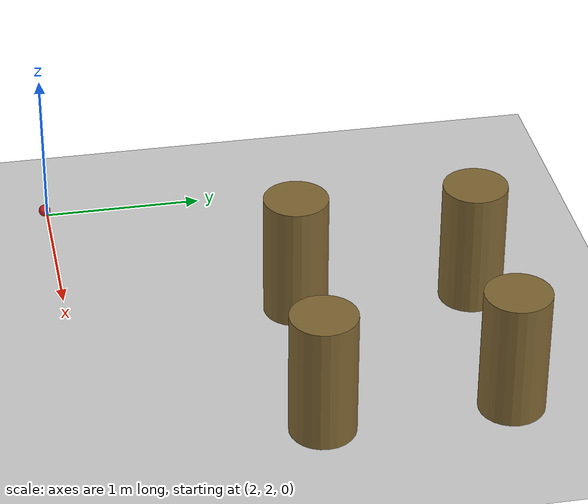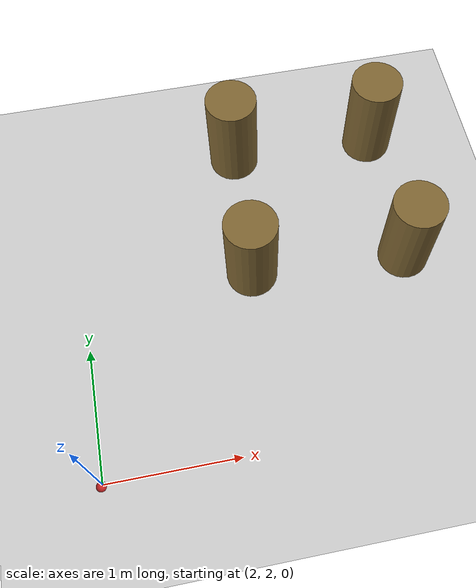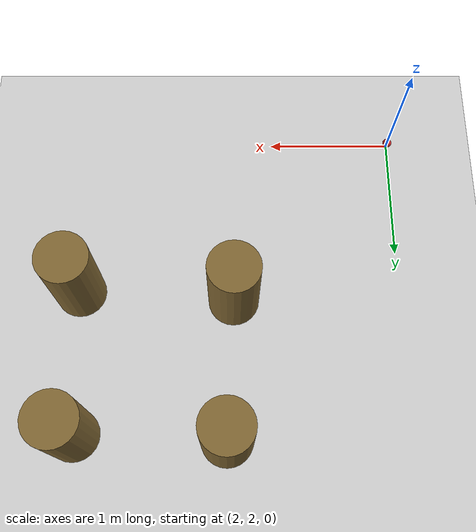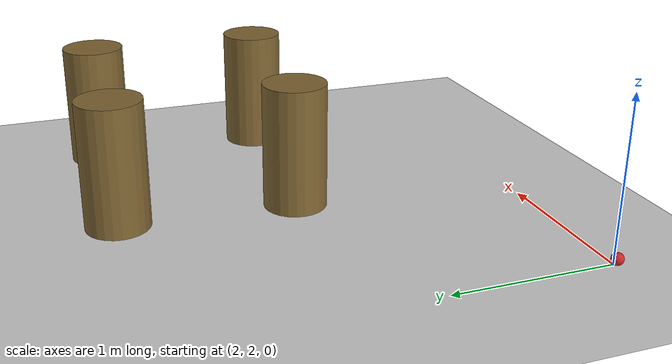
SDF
<sdf version="1.6">
 <world name="default">
  <scene><ambient>0.4 0.4 0.4 1</ambient><background>0.7 0.7 0.7 1</background><shadows>1</shadows></scene>
  <light name="sun" type="directional">
   <pose>0 0 10 0 -0 0</pose>
   <diffuse>0.8 0.8 0.8 1</diffuse>
   <specular>0.2 0.2 0.2 1</specular>
   <attenuation>
    <range>1000</range>
    <constant>0.9</constant>
    <linear>0.01</linear>
    <quadratic>0.001</quadratic>
   </attenuation>
   <direction>-0.5 0.1 -0.9</direction>
  </light>
  <model name="ground_plane">
   <static>1</static>
   <link name="link">
    <collision name="collision">
     <geometry><plane><normal>0 0 1</normal><size>100 100</size></plane></geometry>
     <surface><friction><ode><mu>100</mu><mu2>50</mu2></ode></friction></surface>
    </collision>
    <visual name="visual">
     <cast_shadows>0</cast_shadows>
     <geometry><plane><normal>0 0 1</normal><size>100 100</size></plane></geometry>
     <material>
      <script><uri>file://media/materials/scripts/gazebo.material</uri><name>Gazebo/Grey</name></script>
     </material>
    </visual>
   </link>
  </model>
  <physics name="default_physics" default="0" type="ode">
   <real_time_update_rate>1000</real_time_update_rate>
   <max_step_size>0.001</max_step_size>
   <real_time_factor>1</real_time_factor>
   <ode>
    <solver>
     <type>quick</type>
     <iters>150</iters>
     <precon_iters>0</precon_iters>
     <sor>1.4</sor>
     <use_dynamic_moi_rescaling>1</use_dynamic_moi_rescaling>
    </solver>
    <constraints>
     <cfm>1e-05</cfm>
     <erp>0.2</erp>
     <contact_max_correcting_vel>2000</contact_max_correcting_vel>
     <contact_surface_layer>0.01</contact_surface_layer>
    </constraints>
   </ode>
  </physics>
  <gravity>0 0 -9.8</gravity>
  <magnetic_field>6e-06 2.3e-05 -4.2e-05</magnetic_field>
  <atmosphere type="adiabatic"/>
  <spherical_coordinates>
   <surface_model>EARTH_WGS84</surface_model>
   <latitude_deg>0</latitude_deg>
   <longitude_deg>0</longitude_deg>
   <elevation>0</elevation>
   <heading_deg>0</heading_deg>
  </spherical_coordinates>
  <audio><device>default</device></audio>
  <model name="target_0">
   <link name="link">
    <pose>0 0 0.0375 0 -0 0</pose>
    <inertial>
     <mass>0.1467</mass>
     <inertia>
      <ixx>8.25187e-05</ixx>
      <ixy>0</ixy>
      <ixz>0</ixz>
      <iyy>8.25187e-05</iyy>
      <iyz>0</iyz>
      <izz>8.25187e-05</izz>
     </inertia>
    </inertial>
    <velocity_decay><linear>0</linear><angular>0.005</angular></velocity_decay>
    <visual name="visual">
     <geometry><sphere><radius>0.0375</radius></sphere></geometry>
     <material>
      <script><uri>file://media/materials/scripts/gazebo.material</uri><name>Gazebo/Red</name></script>
      <shader type="pixel"/>
     </material>
    </visual>
    <collision name="collision">
     <geometry><sphere><radius>0.0375</radius></sphere></geometry>
     <surface>
      <friction>
       <ode><mu>1</mu><mu2>1</mu2><fdir1>0 0 0</fdir1><slip1>0</slip1><slip2>0</slip2></ode>
       <torsional>
        <coefficient>1</coefficient>
        <patch_radius>0</patch_radius>
        <surface_radius>0.01</surface_radius>
        <use_patch_radius>0</use_patch_radius>
        <ode><slip>0</slip></ode>
       </torsional>
      </friction>
      <bounce><restitution_coefficient>0</restitution_coefficient><threshold>1e+06</threshold></bounce>
      <contact>
       <collide_without_contact>0</collide_without_contact>
       <collide_without_contact_bitmask>1</collide_without_contact_bitmask>
       <collide_bitmask>1</collide_bitmask>
       <ode>
        <soft_cfm>0</soft_cfm>
        <soft_erp>0.2</soft_erp>
        <kp>100000</kp>
        <kd>100</kd>
        <max_vel>100</max_vel>
        <min_depth>0.001</min_depth>
       </ode>
       <bullet>
        <split_impulse>1</split_impulse>
        <split_impulse_penetration_threshold>-0.01</split_impulse_penetration_threshold>
        <soft_cfm>0</soft_cfm>
        <soft_erp>0.2</soft_erp>
        <kp>100000</kp>
        <kd>100</kd>
       </bullet>
      </contact>
     </surface>
    </collision>
   </link>
   <static>0</static>
   <pose>1.99453 1.98306 -0.001014 0 -0 0</pose>
  </model>
  <model name="static_cylinder">
   <model name="mini_cylinder">
    <link name="link">
     <inertial>
      <mass>1</mass>
      <inertia><ixx>0.145833</ixx><ixy>0</ixy><ixz>0</ixz><iyy>0.145833</iyy><iyz>0</iyz><izz>0.125</izz></inertia>
     </inertial>
     <visual name="visual">
      <geometry><cylinder><radius>0.2</radius><length>0.8</length></cylinder></geometry>
      <material>
       <script><name>Gazebo/Grey</name><uri>file://media/materials/scripts/gazebo.material</uri></script>
       <shader type="vertex"><normal_map>__default__</normal_map></shader>
       <ambient>0.5 0.4 0.2 1</ambient>
       <diffuse>0.7 0.7 0.7 1</diffuse>
       <specular>0.01 0.01 0.01 1</specular>
       <emissive>0 0 0 1</emissive>
      </material>
     </visual>
     <collision name="collision">
      <geometry><cylinder><radius>0.2</radius><length>0.8</length></cylinder></geometry>
      <surface>
       <friction>
        <ode><mu>1</mu><mu2>1</mu2><fdir1>0 0 0</fdir1><slip1>0</slip1><slip2>0</slip2></ode>
        <torsional>
         <coefficient>1</coefficient>
         <patch_radius>0</patch_radius>
         <surface_radius>0</surface_radius>
         <use_patch_radius>1</use_patch_radius>
         <ode><slip>0</slip></ode>
        </torsional>
       </friction>
       <bounce><restitution_coefficient>0</restitution_coefficient><threshold>1e+06</threshold></bounce>
       <contact>
        <collide_without_contact>0</collide_without_contact>
        <collide_without_contact_bitmask>1</collide_without_contact_bitmask>
        <collide_bitmask>1</collide_bitmask>
        <ode>
         <soft_cfm>0</soft_cfm>
         <soft_erp>0.2</soft_erp>
         <kp>1e+13</kp>
         <kd>1</kd>
         <max_vel>0.01</max_vel>
         <min_depth>0</min_depth>
        </ode>
        <bullet>
         <split_impulse>1</split_impulse>
         <split_impulse_penetration_threshold>-0.01</split_impulse_penetration_threshold>
         <soft_cfm>0</soft_cfm>
         <soft_erp>0.2</soft_erp>
         <kp>1e+13</kp>
         <kd>1</kd>
        </bullet>
       </contact>
      </surface>
     </collision>
    </link>
    <static>0</static>
   </model>
   <static>1</static>
   <pose>4.53097 4.46948 0.399991 -1e-06 -1e-06 0</pose>
  </model>
  <model name="static_cylinder_clone">
   <model name="mini_cylinder">
    <link name="link">
     <inertial>
      <mass>1</mass>
      <inertia><ixx>0.145833</ixx><ixy>0</ixy><ixz>0</ixz><iyy>0.145833</iyy><iyz>0</iyz><izz>0.125</izz></inertia>
     </inertial>
     <visual name="visual">
      <geometry><cylinder><radius>0.2</radius><length>0.8</length></cylinder></geometry>
      <material>
       <script><name>Gazebo/Grey</name><uri>file://media/materials/scripts/gazebo.material</uri></script>
       <shader type="vertex"><normal_map>__default__</normal_map></shader>
       <ambient>0.5 0.4 0.2 1</ambient>
       <diffuse>0.7 0.7 0.7 1</diffuse>
       <specular>0.01 0.01 0.01 1</specular>
       <emissive>0 0 0 1</emissive>
      </material>
     </visual>
     <collision name="collision">
      <geometry><cylinder><radius>0.2</radius><length>0.8</length></cylinder></geometry>
      <surface>
       <friction>
        <ode><mu>1</mu><mu2>1</mu2><fdir1>0 0 0</fdir1><slip1>0</slip1><slip2>0</slip2></ode>
        <torsional>
         <coefficient>1</coefficient>
         <patch_radius>0</patch_radius>
         <surface_radius>0</surface_radius>
         <use_patch_radius>1</use_patch_radius>
         <ode><slip>0</slip></ode>
        </torsional>
       </friction>
       <bounce><restitution_coefficient>0</restitution_coefficient><threshold>1e+06</threshold></bounce>
       <contact>
        <collide_without_contact>0</collide_without_contact>
        <collide_without_contact_bitmask>1</collide_without_contact_bitmask>
        <collide_bitmask>1</collide_bitmask>
        <ode>
         <soft_cfm>0</soft_cfm>
         <soft_erp>0.2</soft_erp>
         <kp>1e+13</kp>
         <kd>1</kd>
         <max_vel>0.01</max_vel>
         <min_depth>0</min_depth>
        </ode>
        <bullet>
         <split_impulse>1</split_impulse>
         <split_impulse_penetration_threshold>-0.01</split_impulse_penetration_threshold>
         <soft_cfm>0</soft_cfm>
         <soft_erp>0.2</soft_erp>
         <kp>1e+13</kp>
         <kd>1</kd>
        </bullet>
       </contact>
      </surface>
     </collision>
    </link>
    <static>0</static>
   </model>
   <static>1</static>
   <pose>4.54763 3.34063 0.399991 -1e-06 -1e-06 0</pose>
  </model>
  <model name="static_cylinder_clone_0">
   <model name="mini_cylinder">
    <link name="link">
     <inertial>
      <mass>1</mass>
      <inertia><ixx>0.145833</ixx><ixy>0</ixy><ixz>0</ixz><iyy>0.145833</iyy><iyz>0</iyz><izz>0.125</izz></inertia>
     </inertial>
     <visual name="visual">
      <geometry><cylinder><radius>0.2</radius><length>0.8</length></cylinder></geometry>
      <material>
       <script><name>Gazebo/Grey</name><uri>file://media/materials/scripts/gazebo.material</uri></script>
       <shader type="vertex"><normal_map>__default__</normal_map></shader>
       <ambient>0.5 0.4 0.2 1</ambient>
       <diffuse>0.7 0.7 0.7 1</diffuse>
       <specular>0.01 0.01 0.01 1</specular>
       <emissive>0 0 0 1</emissive>
      </material>
     </visual>
     <collision name="collision">
      <geometry><cylinder><radius>0.2</radius><length>0.8</length></cylinder></geometry>
      <surface>
       <friction>
        <ode><mu>1</mu><mu2>1</mu2><fdir1>0 0 0</fdir1><slip1>0</slip1><slip2>0</slip2></ode>
        <torsional>
         <coefficient>1</coefficient>
         <patch_radius>0</patch_radius>
         <surface_radius>0</surface_radius>
         <use_patch_radius>1</use_patch_radius>
         <ode><slip>0</slip></ode>
        </torsional>
       </friction>
       <bounce><restitution_coefficient>0</restitution_coefficient><threshold>1e+06</threshold></bounce>
       <contact>
        <collide_without_contact>0</collide_without_contact>
        <collide_without_contact_bitmask>1</collide_without_contact_bitmask>
        <collide_bitmask>1</collide_bitmask>
        <ode>
         <soft_cfm>0</soft_cfm>
         <soft_erp>0.2</soft_erp>
         <kp>1e+13</kp>
         <kd>1</kd>
         <max_vel>0.01</max_vel>
         <min_depth>0</min_depth>
        </ode>
        <bullet>
         <split_impulse>1</split_impulse>
         <split_impulse_penetration_threshold>-0.01</split_impulse_penetration_threshold>
         <soft_cfm>0</soft_cfm>
         <soft_erp>0.2</soft_erp>
         <kp>1e+13</kp>
         <kd>1</kd>
        </bullet>
       </contact>
      </surface>
     </collision>
    </link>
    <static>0</static>
   </model>
   <static>1</static>
   <pose>3.37653 4.51173 0.399991 -1e-06 -1e-06 0</pose>
  </model>
  <model name="static_cylinder_clone_1">
   <model name="mini_cylinder">
    <link name="link">
     <inertial>
      <mass>1</mass>
      <inertia><ixx>0.145833</ixx><ixy>0</ixy><ixz>0</ixz><iyy>0.145833</iyy><iyz>0</iyz><izz>0.125</izz></inertia>
     </inertial>
     <visual name="visual">
      <geometry><cylinder><radius>0.2</radius><length>0.8</length></cylinder></geometry>
      <material>
       <script><name>Gazebo/Grey</name><uri>file://media/materials/scripts/gazebo.material</uri></script>
       <shader type="vertex"><normal_map>__default__</normal_map></shader>
       <ambient>0.5 0.4 0.2 1</ambient>
       <diffuse>0.7 0.7 0.7 1</diffuse>
       <specular>0.01 0.01 0.01 1</specular>
       <emissive>0 0 0 1</emissive>
      </material>
     </visual>
     <collision name="collision">
      <geometry><cylinder><radius>0.2</radius><length>0.8</length></cylinder></geometry>
      <surface>
       <friction>
        <ode><mu>1</mu><mu2>1</mu2><fdir1>0 0 0</fdir1><slip1>0</slip1><slip2>0</slip2></ode>
        <torsional>
         <coefficient>1</coefficient>
         <patch_radius>0</patch_radius>
         <surface_radius>0</surface_radius>
         <use_patch_radius>1</use_patch_radius>
         <ode><slip>0</slip></ode>
        </torsional>
       </friction>
       <bounce><restitution_coefficient>0</restitution_coefficient><threshold>1e+06</threshold></bounce>
       <contact>
        <collide_without_contact>0</collide_without_contact>
        <collide_without_contact_bitmask>1</collide_without_contact_bitmask>
        <collide_bitmask>1</collide_bitmask>
        <ode>
         <soft_cfm>0</soft_cfm>
         <soft_erp>0.2</soft_erp>
         <kp>1e+13</kp>
         <kd>1</kd>
         <max_vel>0.01</max_vel>
         <min_depth>0</min_depth>
        </ode>
        <bullet>
         <split_impulse>1</split_impulse>
         <split_impulse_penetration_threshold>-0.01</split_impulse_penetration_threshold>
         <soft_cfm>0</soft_cfm>
         <soft_erp>0.2</soft_erp>
         <kp>1e+13</kp>
         <kd>1</kd>
        </bullet>
       </contact>
      </surface>
     </collision>
    </link>
    <static>0</static>
   </model>
   <static>1</static>
   <pose>3.32603 3.41127 0.399991 -1e-06 -1e-06 0</pose>
  </model>
 </world>
</sdf>
